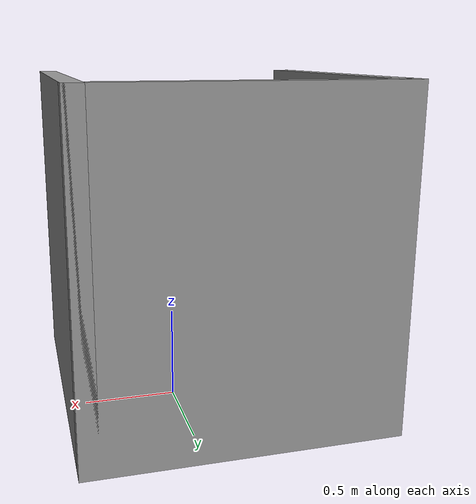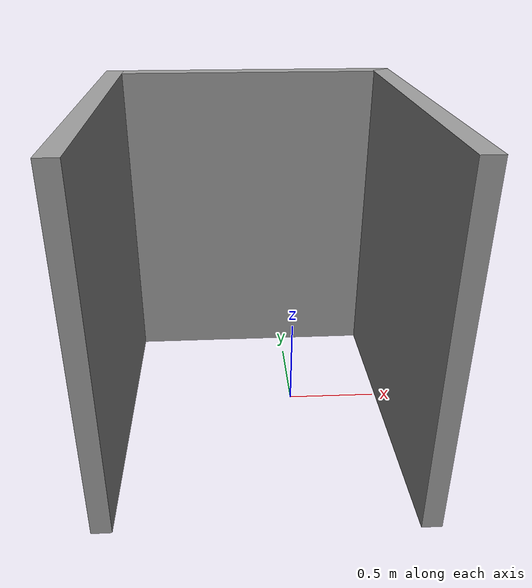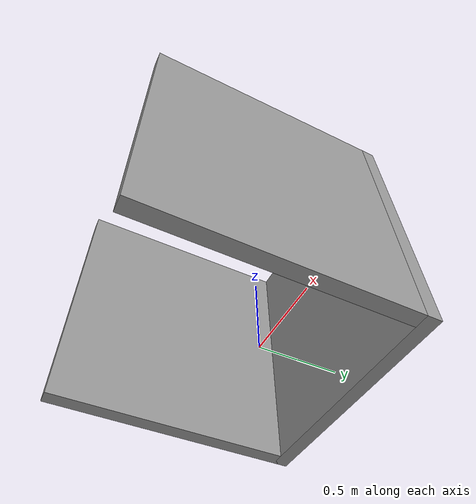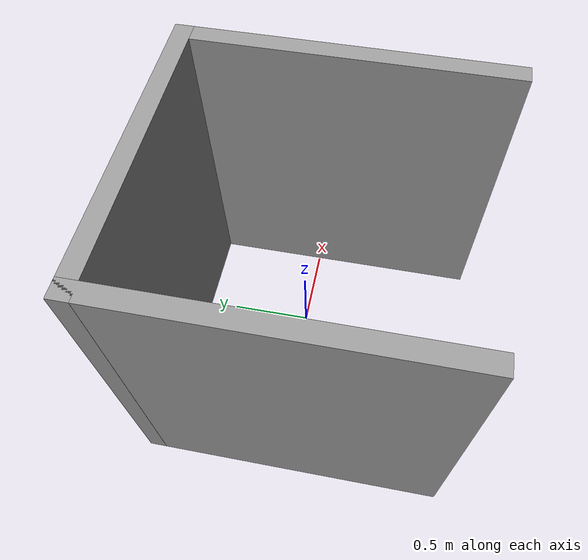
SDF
<?xml version='1.0'?>
<sdf version='1.6'>
  <model name='wall_toilet'>
    <pose frame=''>-0.211 -0.123 0 0 -0 0</pose>
    <link name='Wall_35'>
      <collision name='Wall_35_Collision'>
        <geometry>
          <box>
            <size>1.65024 0.1 1.8</size>
          </box>
        </geometry>
        <pose frame=''>0 0 0.9 0 -0 0</pose>
      </collision>
      <visual name='Wall_35_Visual'>
        <pose frame=''>0 0 0.9 0 -0 0</pose>
        <geometry>
          <box>
            <size>1.65024 0.1 1.8</size>
          </box>
        </geometry>
        <material>
          <script>
            <uri>file://media/materials/scripts/gazebo.material</uri>
            <name>Gazebo/Grey</name>
          </script>
          <ambient>1 1 1 1</ambient>
        </material>
      </visual>
      <pose frame=''>0 0.85 0 0 -0 0</pose>
    </link>
    <link name='Wall_38'>
      <collision name='Wall_38_Collision'>
        <geometry>
          <box>
            <size>1.74955 0.1 1.8</size>
          </box>
        </geometry>
        <pose frame=''>0 0 0.9 0 -0 0</pose>
      </collision>
      <visual name='Wall_38_Visual'>
        <pose frame=''>0 0 0.9 0 -0 0</pose>
        <geometry>
          <box>
            <size>1.74955 0.1 1.8</size>
          </box>
        </geometry>
        <material>
          <script>
            <uri>file://media/materials/scripts/gazebo.material</uri>
            <name>Gazebo/Grey</name>
          </script>
          <ambient>1 1 1 1</ambient>
        </material>
      </visual>
      <pose frame=''>-0.775 0.025 0 0 0 -1.5708</pose>
    </link>
    <link name='Wall_40'>
      <collision name='Wall_40_Collision'>
        <geometry>
          <box>
            <size>1.8 0.1 1.8</size>
          </box>
        </geometry>
        <pose frame=''>0 0 0.9 0 -0 0</pose>
      </collision>
      <visual name='Wall_40_Visual'>
        <pose frame=''>0 0 0.9 0 -0 0</pose>
        <geometry>
          <box>
            <size>1.8 0.1 1.8</size>
          </box>
        </geometry>
        <material>
          <script>
            <uri>file://media/materials/scripts/gazebo.material</uri>
            <name>Gazebo/Grey</name>
          </script>
          <ambient>1 1 1 1</ambient>
        </material>
      </visual>
      <pose frame=''>0.775 0 0 0 0 -1.5708</pose>
    </link>
    <static>1</static>
  </model>
</sdf>
